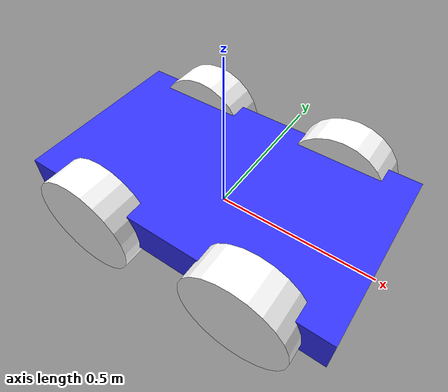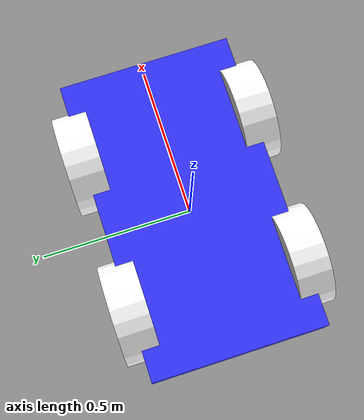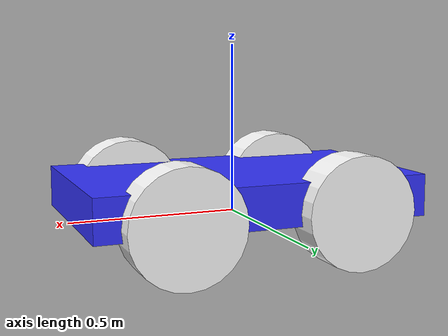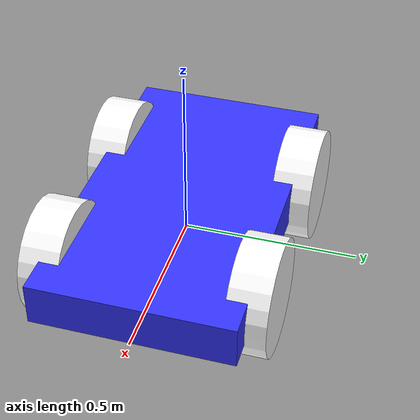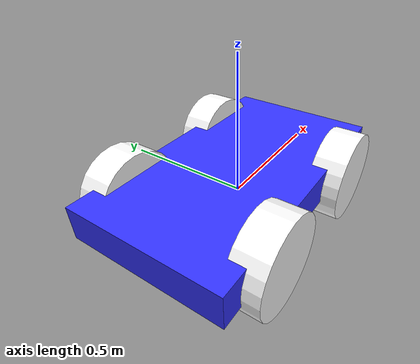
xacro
<?xml version="1.0"?>

<robot xmlns:xacro="http://ros.org/wiki/xacro" name="rover">
  <!-- robot name parameter -->

  <xacro:arg name="prefix" default="" />
  <xacro:arg name="gazebo_controllers" default="$(find rover_control)/config/control.yaml" />

  <xacro:include filename="$(find rover_description)/urdf/rover_macro.urdf.xacro" />

  <!-- Load rover description -->
  <xacro:rover prefix="$(arg prefix)" />

  <xacro:if value="$(arg is_sim)">

    <gazebo>
      <plugin name="$(arg prefix)gazebo_ros2_control" filename="libgazebo_ros2_control.so">
        <parameters>$(arg gazebo_controllers)</parameters>
      </plugin>
    </gazebo>

  </xacro:if>

  <!-- Optional custom includes. -->

</robot>

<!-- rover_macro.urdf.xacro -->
<robot xmlns:xacro="http://ros.org/wiki/xacro">

  <xacro:property name="rover_front_bumper_extend" value="$(optenv ROVER_FRONT_BUMPER_EXTEND 0)" />
  <xacro:property name="rover_rear_bumper_extend" value="$(optenv ROVER_REAR_BUMPER_EXTEND 0)" />

  <xacro:arg name="robot_namespace" default="/" />
  <xacro:arg name="is_sim" default="false" />

  <!-- Included URDF/XACRO Files -->
  <xacro:include filename="$(find rover_description)/urdf/wheel.urdf.xacro" />

  <xacro:property name="M_PI" value="3.14159"/>
  <material name="blue">
      <color rgba="0.2 0.2 1 1"/>
  </material>

  <xacro:macro name="rover" params="prefix">

    <!-- Base Size -->
    <xacro:property name="base_x_size" value="0.98740000" />
    <xacro:property name="base_y_size" value="0.57090000" />
    <xacro:property name="base_z_size" value="0.24750000" />

    <!-- Wheel Mounting Positions -->
    <xacro:property name="wheelbase" value="0.5120" />
    <xacro:property name="track" value="0.5708" />
    <xacro:property name="wheel_vertical_offset" value="0.03282" />

    <!-- Wheel Properties -->
    <xacro:property name="wheel_length" value="0.1143" />
    <xacro:property name="wheel_radius" value="0.1651" />

    <!-- Base link is the center of the robot's bottom plate -->
    <link name="${prefix}base_link">
      <visual>
      <origin xyz="${( rover_front_bumper_extend - rover_rear_bumper_extend ) / 2.0} 0 ${base_z_size/4}" rpy="0 0 0" />
        <geometry>
          <box size="${ base_x_size + rover_front_bumper_extend + rover_rear_bumper_extend } ${base_y_size} ${base_z_size/2}"/>
        </geometry>
        <material name="blue"/>
      </visual>
      <collision>
        <origin xyz="${( rover_front_bumper_extend - rover_rear_bumper_extend ) / 2.0} 0 ${base_z_size/4}" rpy="0 0 0" />
        <geometry>
          <box size="${ base_x_size + rover_front_bumper_extend + rover_rear_bumper_extend } ${base_y_size} ${base_z_size/2}"/>
        </geometry>
      </collision>
      <collision>
        <origin xyz="0 0 ${base_z_size*3/4-0.01}" rpy="0 0 0" />
        <geometry>
          <box size="${base_x_size*4/5} ${base_y_size} ${base_z_size/2-0.02}"/>
        </geometry>
      </collision>
    </link>

    <!-- Base footprint is on the ground under the robot -->
    <link name="${prefix}base_footprint"/>

    <joint name="${prefix}base_footprint_joint" type="fixed">
      <origin xyz="0 0 ${wheel_vertical_offset - wheel_radius}" rpy="0 0 0" />
      <parent link="${prefix}base_link" />
      <child link="${prefix}base_footprint" />
    </joint>

    <!-- Inertial link stores the robot's inertial information -->
    <link name="${prefix}inertial_link">
      <inertial>
        <mass value="46.034" />
        <origin xyz="-0.00065 -0.085 0.062" />
        <inertia ixx="0.6022" ixy="-0.02364" ixz="-0.1197" iyy="1.7386" iyz="-0.001544" izz="2.0296" />
      </inertial>
    </link>

    <joint name="${prefix}inertial_joint" type="fixed">
      <origin xyz="0 0 0" rpy="0 0 0" />
      <parent link="${prefix}base_link" />
      <child link="${prefix}inertial_link" />
    </joint>

    <!-- Rover wheel macros -->
    <xacro:rover_wheel wheel_prefix="${prefix}front_left" prefix="${prefix}">
      <origin xyz="${wheelbase/2} ${track/2} ${wheel_vertical_offset}" rpy="0 0 0" />
    </xacro:rover_wheel>
    <xacro:rover_wheel wheel_prefix="${prefix}front_right" prefix="${prefix}">
      <origin xyz="${wheelbase/2} ${-track/2} ${wheel_vertical_offset}" rpy="0 0 0" />
    </xacro:rover_wheel>
    <xacro:rover_wheel wheel_prefix="${prefix}rear_left" prefix="${prefix}">
      <origin xyz="${-wheelbase/2} ${track/2} ${wheel_vertical_offset}" rpy="0 0 0" />
    </xacro:rover_wheel>
    <xacro:rover_wheel wheel_prefix="${prefix}rear_right" prefix="${prefix}">
      <origin xyz="${-wheelbase/2} ${-track/2} ${wheel_vertical_offset}" rpy="0 0 0" />
    </xacro:rover_wheel>

    <ros2_control name="${prefix}rover_drive" type="system">
      <hardware>
        <xacro:if value="$(arg is_sim)">
          <plugin>gazebo_ros2_control/GazeboSystem</plugin>
        </xacro:if>
        <xacro:unless value="$(arg is_sim)">
          <plugin>rover_drive/PropulsionInterfaceHardware</plugin>
          <plugin>fake_components/GenericSystem</plugin>
          <param name="forward_left_wheel_name">front_left_wheel_joint</param>
          <param name="forward_right_wheel_name">front_right_wheel_joint</param>
          <param name="rear_left_wheel_name">rear_left_wheel_joint</param>
          <param name="rear_right_wheel_name">rear_right_wheel_joint</param>
          <param name="loop_rate">30</param>
          <param name="baud_rate">57600</param>
          <param name="timeout">1000</param>
          <param name="forward_left_enc_counts_per_rev">1000</param>
          <param name="forward_right_enc_counts_per_rev">1000</param>
          <param name="rear_left_enc_counts_per_rev">1000</param>
          <param name="rear_right_enc_counts_per_rev">1000</param>
          <param name="device">/dev/pts/11</param>
        </xacro:unless>
      </hardware>
      <joint name="${prefix}front_left_wheel_joint">
        <command_interface name="velocity">
          <param name="min">-1</param>
          <param name="max">1</param>
        </command_interface>
        <state_interface name="position"/>
        <state_interface name="velocity"/>
      </joint>
      <joint name="${prefix}rear_left_wheel_joint">
        <command_interface name="velocity">
          <param name="min">-1</param>
          <param name="max">1</param>
        </command_interface>
        <state_interface name="position"/>
        <state_interface name="velocity"/>
      </joint>
      <joint name="${prefix}front_right_wheel_joint">
        <command_interface name="velocity">
          <param name="min">-1</param>
          <param name="max">1</param>
        </command_interface>
        <state_interface name="position"/>
        <state_interface name="velocity"/>
      </joint>
      <joint name="${prefix}rear_right_wheel_joint">
        <command_interface name="velocity">
          <param name="min">-1</param>
          <param name="max">1</param>
        </command_interface>
        <state_interface name="position"/>
        <state_interface name="velocity"/>
      </joint>
    </ros2_control>

  </xacro:macro>

</robot>

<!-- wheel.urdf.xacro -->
<robot xmlns:xacro="http://ros.org/wiki/xacro" name="rover_wheel">
  <material name="white">
    <color rgba="1 1 1 1" />
  </material>

  <xacro:macro name="rover_wheel" params="wheel_prefix prefix *joint_pose">
    <link name="${wheel_prefix}_wheel">
      <inertial>
        <mass value="2.637" />
        <origin xyz="0 0 0" />
        <inertia  ixx="0.02467" ixy="0" ixz="0" iyy="0.04411" iyz="0" izz="0.02467" />
      </inertial>
      <visual>
      <origin xyz="0 0 0" rpy="${M_PI/2} 0 0" />
        <geometry>
          <cylinder length="${wheel_length}" radius="${wheel_radius}" />
        </geometry>
        <material name="white"/>
      </visual>
      <collision>
        <origin xyz="0 0 0" rpy="${M_PI/2} 0 0" />
        <geometry>
          <cylinder length="${wheel_length}" radius="${wheel_radius}" />
        </geometry>
      </collision>
    </link>

    <gazebo reference="${wheel_prefix}_wheel">
      <mu1 value="1.0"/>
      <mu2 value="0.5"/>
      <kp value="10000000.0" />
      <kd value="1.0" />
      <fdir1 value="1 0 0"/>
    </gazebo>

    <joint name="${wheel_prefix}_wheel_joint" type="continuous">
      <parent link="${prefix}base_link"/>
      <child link="${wheel_prefix}_wheel"/>
      <xacro:insert_block name="joint_pose"/>
      <axis xyz="0 1 0" rpy="0 0 0" />
    </joint>

  </xacro:macro>
</robot>
